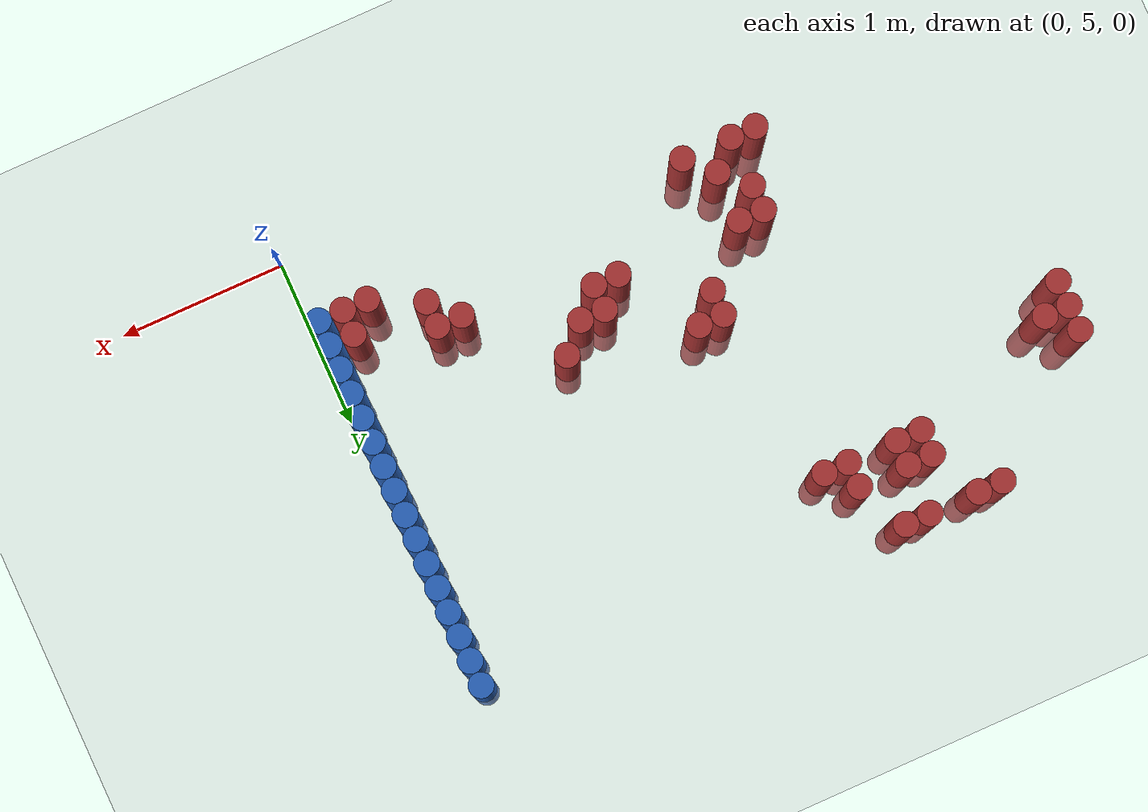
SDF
<sdf version="1.6">
 <world name="default">
  <model name="ground_plane">
   <static>1</static>
   <link name="link">
    <collision name="collision">
     <geometry><plane><normal>0 0 1</normal><size>100 100</size></plane></geometry>
     <surface><friction><ode><mu>100</mu><mu2>50</mu2></ode></friction></surface>
    </collision>
    <visual name="visual">
     <cast_shadows>0</cast_shadows>
     <geometry><plane><normal>0 0 1</normal><size>100 100</size></plane></geometry>
     <material>
      <script><uri>file://media/materials/scripts/gazebo.material</uri><name>Gazebo/Grey</name></script>
     </material>
    </visual>
   </link>
  </model>
  <model name="unit_cylinder_152">
   <static>1</static>
   <pose>-3.975000 6.975000 0.000000 0.000000 0.000000 0.000000</pose>
   <link name="link">
    <inertial>
     <mass>1</mass>
     <inertia><ixx>0.145833</ixx><ixy>0</ixy><ixz>0</ixz><iyy>0.145833</iyy><iyz>0</iyz><izz>0.125</izz></inertia>
    </inertial>
    <collision name="collision">
     <geometry><cylinder><radius>0.075000</radius><length>2</length></cylinder></geometry>
    </collision>
    <visual name="visual">
     <geometry><cylinder><radius>0.075000</radius><length>2</length></cylinder></geometry>
     <material>
      <ambient>0.648000 0.192000 0.192000 1</ambient>
      <diffuse>0.648000 0.192000 0.192000 1</diffuse>
     </material>
     <material>
      <script><name>Gazebo/Grey</name><uri>file://media/materials/scripts/gazebo.material</uri></script>
     </material>
    </visual>
   </link>
  </model>
  <model name="unit_cylinder_153">
   <static>1</static>
   <pose>-3.975000 7.125000 0.000000 0.000000 0.000000 0.000000</pose>
   <link name="link">
    <inertial>
     <mass>1</mass>
     <inertia><ixx>0.145833</ixx><ixy>0</ixy><ixz>0</ixz><iyy>0.145833</iyy><iyz>0</iyz><izz>0.125</izz></inertia>
    </inertial>
    <collision name="collision">
     <geometry><cylinder><radius>0.075000</radius><length>2</length></cylinder></geometry>
    </collision>
    <visual name="visual">
     <geometry><cylinder><radius>0.075000</radius><length>2</length></cylinder></geometry>
     <material>
      <ambient>0.648000 0.192000 0.192000 1</ambient>
      <diffuse>0.648000 0.192000 0.192000 1</diffuse>
     </material>
     <material>
      <script><name>Gazebo/Grey</name><uri>file://media/materials/scripts/gazebo.material</uri></script>
     </material>
    </visual>
   </link>
  </model>
  <model name="unit_cylinder_154">
   <static>1</static>
   <pose>-3.975000 7.275000 0.000000 0.000000 0.000000 0.000000</pose>
   <link name="link">
    <inertial>
     <mass>1</mass>
     <inertia><ixx>0.145833</ixx><ixy>0</ixy><ixz>0</ixz><iyy>0.145833</iyy><iyz>0</iyz><izz>0.125</izz></inertia>
    </inertial>
    <collision name="collision">
     <geometry><cylinder><radius>0.075000</radius><length>2</length></cylinder></geometry>
    </collision>
    <visual name="visual">
     <geometry><cylinder><radius>0.075000</radius><length>2</length></cylinder></geometry>
     <material>
      <ambient>0.648000 0.192000 0.192000 1</ambient>
      <diffuse>0.648000 0.192000 0.192000 1</diffuse>
     </material>
     <material>
      <script><name>Gazebo/Grey</name><uri>file://media/materials/scripts/gazebo.material</uri></script>
     </material>
    </visual>
   </link>
  </model>
  <model name="unit_cylinder_157">
   <static>1</static>
   <pose>-3.825000 7.125000 0.000000 0.000000 0.000000 0.000000</pose>
   <link name="link">
    <inertial>
     <mass>1</mass>
     <inertia><ixx>0.145833</ixx><ixy>0</ixy><ixz>0</ixz><iyy>0.145833</iyy><iyz>0</iyz><izz>0.125</izz></inertia>
    </inertial>
    <collision name="collision">
     <geometry><cylinder><radius>0.075000</radius><length>2</length></cylinder></geometry>
    </collision>
    <visual name="visual">
     <geometry><cylinder><radius>0.075000</radius><length>2</length></cylinder></geometry>
     <material>
      <ambient>0.648000 0.192000 0.192000 1</ambient>
      <diffuse>0.648000 0.192000 0.192000 1</diffuse>
     </material>
     <material>
      <script><name>Gazebo/Grey</name><uri>file://media/materials/scripts/gazebo.material</uri></script>
     </material>
    </visual>
   </link>
  </model>
  <model name="unit_cylinder_167">
   <static>1</static>
   <pose>-3.225000 7.875000 0.000000 0.000000 0.000000 0.000000</pose>
   <link name="link">
    <inertial>
     <mass>1</mass>
     <inertia><ixx>0.145833</ixx><ixy>0</ixy><ixz>0</ixz><iyy>0.145833</iyy><iyz>0</iyz><izz>0.125</izz></inertia>
    </inertial>
    <collision name="collision">
     <geometry><cylinder><radius>0.075000</radius><length>2</length></cylinder></geometry>
    </collision>
    <visual name="visual">
     <geometry><cylinder><radius>0.075000</radius><length>2</length></cylinder></geometry>
     <material>
      <ambient>0.648000 0.192000 0.192000 1</ambient>
      <diffuse>0.648000 0.192000 0.192000 1</diffuse>
     </material>
     <material>
      <script><name>Gazebo/Grey</name><uri>file://media/materials/scripts/gazebo.material</uri></script>
     </material>
    </visual>
   </link>
  </model>
  <model name="unit_cylinder_174">
   <static>1</static>
   <pose>-3.075000 7.875000 0.000000 0.000000 0.000000 0.000000</pose>
   <link name="link">
    <inertial>
     <mass>1</mass>
     <inertia><ixx>0.145833</ixx><ixy>0</ixy><ixz>0</ixz><iyy>0.145833</iyy><iyz>0</iyz><izz>0.125</izz></inertia>
    </inertial>
    <collision name="collision">
     <geometry><cylinder><radius>0.075000</radius><length>2</length></cylinder></geometry>
    </collision>
    <visual name="visual">
     <geometry><cylinder><radius>0.075000</radius><length>2</length></cylinder></geometry>
     <material>
      <ambient>0.648000 0.192000 0.192000 1</ambient>
      <diffuse>0.648000 0.192000 0.192000 1</diffuse>
     </material>
     <material>
      <script><name>Gazebo/Grey</name><uri>file://media/materials/scripts/gazebo.material</uri></script>
     </material>
    </visual>
   </link>
  </model>
  <model name="unit_cylinder_178">
   <static>1</static>
   <pose>-2.925000 7.425000 0.000000 0.000000 0.000000 0.000000</pose>
   <link name="link">
    <inertial>
     <mass>1</mass>
     <inertia><ixx>0.145833</ixx><ixy>0</ixy><ixz>0</ixz><iyy>0.145833</iyy><iyz>0</iyz><izz>0.125</izz></inertia>
    </inertial>
    <collision name="collision">
     <geometry><cylinder><radius>0.075000</radius><length>2</length></cylinder></geometry>
    </collision>
    <visual name="visual">
     <geometry><cylinder><radius>0.075000</radius><length>2</length></cylinder></geometry>
     <material>
      <ambient>0.648000 0.192000 0.192000 1</ambient>
      <diffuse>0.648000 0.192000 0.192000 1</diffuse>
     </material>
     <material>
      <script><name>Gazebo/Grey</name><uri>file://media/materials/scripts/gazebo.material</uri></script>
     </material>
    </visual>
   </link>
  </model>
  <model name="unit_cylinder_179">
   <static>1</static>
   <pose>-2.925000 7.575000 0.000000 0.000000 0.000000 0.000000</pose>
   <link name="link">
    <inertial>
     <mass>1</mass>
     <inertia><ixx>0.145833</ixx><ixy>0</ixy><ixz>0</ixz><iyy>0.145833</iyy><iyz>0</iyz><izz>0.125</izz></inertia>
    </inertial>
    <collision name="collision">
     <geometry><cylinder><radius>0.075000</radius><length>2</length></cylinder></geometry>
    </collision>
    <visual name="visual">
     <geometry><cylinder><radius>0.075000</radius><length>2</length></cylinder></geometry>
     <material>
      <ambient>0.648000 0.192000 0.192000 1</ambient>
      <diffuse>0.648000 0.192000 0.192000 1</diffuse>
     </material>
     <material>
      <script><name>Gazebo/Grey</name><uri>file://media/materials/scripts/gazebo.material</uri></script>
     </material>
    </visual>
   </link>
  </model>
  <model name="unit_cylinder_183">
   <static>1</static>
   <pose>-2.775000 5.475000 0.000000 0.000000 0.000000 0.000000</pose>
   <link name="link">
    <inertial>
     <mass>1</mass>
     <inertia><ixx>0.145833</ixx><ixy>0</ixy><ixz>0</ixz><iyy>0.145833</iyy><iyz>0</iyz><izz>0.125</izz></inertia>
    </inertial>
    <collision name="collision">
     <geometry><cylinder><radius>0.075000</radius><length>2</length></cylinder></geometry>
    </collision>
    <visual name="visual">
     <geometry><cylinder><radius>0.075000</radius><length>2</length></cylinder></geometry>
     <material>
      <ambient>0.648000 0.192000 0.192000 1</ambient>
      <diffuse>0.648000 0.192000 0.192000 1</diffuse>
     </material>
     <material>
      <script><name>Gazebo/Grey</name><uri>file://media/materials/scripts/gazebo.material</uri></script>
     </material>
    </visual>
   </link>
  </model>
  <model name="unit_cylinder_184">
   <static>1</static>
   <pose>-2.775000 7.425000 0.000000 0.000000 0.000000 0.000000</pose>
   <link name="link">
    <inertial>
     <mass>1</mass>
     <inertia><ixx>0.145833</ixx><ixy>0</ixy><ixz>0</ixz><iyy>0.145833</iyy><iyz>0</iyz><izz>0.125</izz></inertia>
    </inertial>
    <collision name="collision">
     <geometry><cylinder><radius>0.075000</radius><length>2</length></cylinder></geometry>
    </collision>
    <visual name="visual">
     <geometry><cylinder><radius>0.075000</radius><length>2</length></cylinder></geometry>
     <material>
      <ambient>0.648000 0.192000 0.192000 1</ambient>
      <diffuse>0.648000 0.192000 0.192000 1</diffuse>
     </material>
     <material>
      <script><name>Gazebo/Grey</name><uri>file://media/materials/scripts/gazebo.material</uri></script>
     </material>
    </visual>
   </link>
  </model>
  <model name="unit_cylinder_185">
   <static>1</static>
   <pose>-2.775000 7.575000 0.000000 0.000000 0.000000 0.000000</pose>
   <link name="link">
    <inertial>
     <mass>1</mass>
     <inertia><ixx>0.145833</ixx><ixy>0</ixy><ixz>0</ixz><iyy>0.145833</iyy><iyz>0</iyz><izz>0.125</izz></inertia>
    </inertial>
    <collision name="collision">
     <geometry><cylinder><radius>0.075000</radius><length>2</length></cylinder></geometry>
    </collision>
    <visual name="visual">
     <geometry><cylinder><radius>0.075000</radius><length>2</length></cylinder></geometry>
     <material>
      <ambient>0.648000 0.192000 0.192000 1</ambient>
      <diffuse>0.648000 0.192000 0.192000 1</diffuse>
     </material>
     <material>
      <script><name>Gazebo/Grey</name><uri>file://media/materials/scripts/gazebo.material</uri></script>
     </material>
    </visual>
   </link>
  </model>
  <model name="unit_cylinder_186">
   <static>1</static>
   <pose>-2.775000 7.875000 0.000000 0.000000 0.000000 0.000000</pose>
   <link name="link">
    <inertial>
     <mass>1</mass>
     <inertia><ixx>0.145833</ixx><ixy>0</ixy><ixz>0</ixz><iyy>0.145833</iyy><iyz>0</iyz><izz>0.125</izz></inertia>
    </inertial>
    <collision name="collision">
     <geometry><cylinder><radius>0.075000</radius><length>2</length></cylinder></geometry>
    </collision>
    <visual name="visual">
     <geometry><cylinder><radius>0.075000</radius><length>2</length></cylinder></geometry>
     <material>
      <ambient>0.648000 0.192000 0.192000 1</ambient>
      <diffuse>0.648000 0.192000 0.192000 1</diffuse>
     </material>
     <material>
      <script><name>Gazebo/Grey</name><uri>file://media/materials/scripts/gazebo.material</uri></script>
     </material>
    </visual>
   </link>
  </model>
  <model name="unit_cylinder_190">
   <static>1</static>
   <pose>-2.625000 5.475000 0.000000 0.000000 0.000000 0.000000</pose>
   <link name="link">
    <inertial>
     <mass>1</mass>
     <inertia><ixx>0.145833</ixx><ixy>0</ixy><ixz>0</ixz><iyy>0.145833</iyy><iyz>0</iyz><izz>0.125</izz></inertia>
    </inertial>
    <collision name="collision">
     <geometry><cylinder><radius>0.075000</radius><length>2</length></cylinder></geometry>
    </collision>
    <visual name="visual">
     <geometry><cylinder><radius>0.075000</radius><length>2</length></cylinder></geometry>
     <material>
      <ambient>0.648000 0.192000 0.192000 1</ambient>
      <diffuse>0.648000 0.192000 0.192000 1</diffuse>
     </material>
     <material>
      <script><name>Gazebo/Grey</name><uri>file://media/materials/scripts/gazebo.material</uri></script>
     </material>
    </visual>
   </link>
  </model>
  <model name="unit_cylinder_191">
   <static>1</static>
   <pose>-2.625000 5.775000 0.000000 0.000000 0.000000 0.000000</pose>
   <link name="link">
    <inertial>
     <mass>1</mass>
     <inertia><ixx>0.145833</ixx><ixy>0</ixy><ixz>0</ixz><iyy>0.145833</iyy><iyz>0</iyz><izz>0.125</izz></inertia>
    </inertial>
    <collision name="collision">
     <geometry><cylinder><radius>0.075000</radius><length>2</length></cylinder></geometry>
    </collision>
    <visual name="visual">
     <geometry><cylinder><radius>0.075000</radius><length>2</length></cylinder></geometry>
     <material>
      <ambient>0.648000 0.192000 0.192000 1</ambient>
      <diffuse>0.648000 0.192000 0.192000 1</diffuse>
     </material>
     <material>
      <script><name>Gazebo/Grey</name><uri>file://media/materials/scripts/gazebo.material</uri></script>
     </material>
    </visual>
   </link>
  </model>
  <model name="unit_cylinder_192">
   <static>1</static>
   <pose>-2.625000 5.925000 0.000000 0.000000 0.000000 0.000000</pose>
   <link name="link">
    <inertial>
     <mass>1</mass>
     <inertia><ixx>0.145833</ixx><ixy>0</ixy><ixz>0</ixz><iyy>0.145833</iyy><iyz>0</iyz><izz>0.125</izz></inertia>
    </inertial>
    <collision name="collision">
     <geometry><cylinder><radius>0.075000</radius><length>2</length></cylinder></geometry>
    </collision>
    <visual name="visual">
     <geometry><cylinder><radius>0.075000</radius><length>2</length></cylinder></geometry>
     <material>
      <ambient>0.648000 0.192000 0.192000 1</ambient>
      <diffuse>0.648000 0.192000 0.192000 1</diffuse>
     </material>
     <material>
      <script><name>Gazebo/Grey</name><uri>file://media/materials/scripts/gazebo.material</uri></script>
     </material>
    </visual>
   </link>
  </model>
  <model name="unit_cylinder_193">
   <static>1</static>
   <pose>-2.625000 7.875000 0.000000 0.000000 0.000000 0.000000</pose>
   <link name="link">
    <inertial>
     <mass>1</mass>
     <inertia><ixx>0.145833</ixx><ixy>0</ixy><ixz>0</ixz><iyy>0.145833</iyy><iyz>0</iyz><izz>0.125</izz></inertia>
    </inertial>
    <collision name="collision">
     <geometry><cylinder><radius>0.075000</radius><length>2</length></cylinder></geometry>
    </collision>
    <visual name="visual">
     <geometry><cylinder><radius>0.075000</radius><length>2</length></cylinder></geometry>
     <material>
      <ambient>0.648000 0.192000 0.192000 1</ambient>
      <diffuse>0.648000 0.192000 0.192000 1</diffuse>
     </material>
     <material>
      <script><name>Gazebo/Grey</name><uri>file://media/materials/scripts/gazebo.material</uri></script>
     </material>
    </visual>
   </link>
  </model>
  <model name="unit_cylinder_195">
   <static>1</static>
   <pose>-2.475000 5.625000 0.000000 0.000000 0.000000 0.000000</pose>
   <link name="link">
    <inertial>
     <mass>1</mass>
     <inertia><ixx>0.145833</ixx><ixy>0</ixy><ixz>0</ixz><iyy>0.145833</iyy><iyz>0</iyz><izz>0.125</izz></inertia>
    </inertial>
    <collision name="collision">
     <geometry><cylinder><radius>0.075000</radius><length>2</length></cylinder></geometry>
    </collision>
    <visual name="visual">
     <geometry><cylinder><radius>0.075000</radius><length>2</length></cylinder></geometry>
     <material>
      <ambient>0.648000 0.192000 0.192000 1</ambient>
      <diffuse>0.648000 0.192000 0.192000 1</diffuse>
     </material>
     <material>
      <script><name>Gazebo/Grey</name><uri>file://media/materials/scripts/gazebo.material</uri></script>
     </material>
    </visual>
   </link>
  </model>
  <model name="unit_cylinder_196">
   <static>1</static>
   <pose>-2.475000 5.925000 0.000000 0.000000 0.000000 0.000000</pose>
   <link name="link">
    <inertial>
     <mass>1</mass>
     <inertia><ixx>0.145833</ixx><ixy>0</ixy><ixz>0</ixz><iyy>0.145833</iyy><iyz>0</iyz><izz>0.125</izz></inertia>
    </inertial>
    <collision name="collision">
     <geometry><cylinder><radius>0.075000</radius><length>2</length></cylinder></geometry>
    </collision>
    <visual name="visual">
     <geometry><cylinder><radius>0.075000</radius><length>2</length></cylinder></geometry>
     <material>
      <ambient>0.648000 0.192000 0.192000 1</ambient>
      <diffuse>0.648000 0.192000 0.192000 1</diffuse>
     </material>
     <material>
      <script><name>Gazebo/Grey</name><uri>file://media/materials/scripts/gazebo.material</uri></script>
     </material>
    </visual>
   </link>
  </model>
  <model name="unit_cylinder_197">
   <static>1</static>
   <pose>-2.475000 7.425000 0.000000 0.000000 0.000000 0.000000</pose>
   <link name="link">
    <inertial>
     <mass>1</mass>
     <inertia><ixx>0.145833</ixx><ixy>0</ixy><ixz>0</ixz><iyy>0.145833</iyy><iyz>0</iyz><izz>0.125</izz></inertia>
    </inertial>
    <collision name="collision">
     <geometry><cylinder><radius>0.075000</radius><length>2</length></cylinder></geometry>
    </collision>
    <visual name="visual">
     <geometry><cylinder><radius>0.075000</radius><length>2</length></cylinder></geometry>
     <material>
      <ambient>0.648000 0.192000 0.192000 1</ambient>
      <diffuse>0.648000 0.192000 0.192000 1</diffuse>
     </material>
     <material>
      <script><name>Gazebo/Grey</name><uri>file://media/materials/scripts/gazebo.material</uri></script>
     </material>
    </visual>
   </link>
  </model>
  <model name="unit_cylinder_198">
   <static>1</static>
   <pose>-2.475000 7.575000 0.000000 0.000000 0.000000 0.000000</pose>
   <link name="link">
    <inertial>
     <mass>1</mass>
     <inertia><ixx>0.145833</ixx><ixy>0</ixy><ixz>0</ixz><iyy>0.145833</iyy><iyz>0</iyz><izz>0.125</izz></inertia>
    </inertial>
    <collision name="collision">
     <geometry><cylinder><radius>0.075000</radius><length>2</length></cylinder></geometry>
    </collision>
    <visual name="visual">
     <geometry><cylinder><radius>0.075000</radius><length>2</length></cylinder></geometry>
     <material>
      <ambient>0.648000 0.192000 0.192000 1</ambient>
      <diffuse>0.648000 0.192000 0.192000 1</diffuse>
     </material>
     <material>
      <script><name>Gazebo/Grey</name><uri>file://media/materials/scripts/gazebo.material</uri></script>
     </material>
    </visual>
   </link>
  </model>
  <model name="unit_cylinder_199">
   <static>1</static>
   <pose>-2.325000 5.475000 0.000000 0.000000 0.000000 0.000000</pose>
   <link name="link">
    <inertial>
     <mass>1</mass>
     <inertia><ixx>0.145833</ixx><ixy>0</ixy><ixz>0</ixz><iyy>0.145833</iyy><iyz>0</iyz><izz>0.125</izz></inertia>
    </inertial>
    <collision name="collision">
     <geometry><cylinder><radius>0.075000</radius><length>2</length></cylinder></geometry>
    </collision>
    <visual name="visual">
     <geometry><cylinder><radius>0.075000</radius><length>2</length></cylinder></geometry>
     <material>
      <ambient>0.648000 0.192000 0.192000 1</ambient>
      <diffuse>0.648000 0.192000 0.192000 1</diffuse>
     </material>
     <material>
      <script><name>Gazebo/Grey</name><uri>file://media/materials/scripts/gazebo.material</uri></script>
     </material>
    </visual>
   </link>
  </model>
  <model name="unit_cylinder_200">
   <static>1</static>
   <pose>-2.325000 7.425000 0.000000 0.000000 0.000000 0.000000</pose>
   <link name="link">
    <inertial>
     <mass>1</mass>
     <inertia><ixx>0.145833</ixx><ixy>0</ixy><ixz>0</ixz><iyy>0.145833</iyy><iyz>0</iyz><izz>0.125</izz></inertia>
    </inertial>
    <collision name="collision">
     <geometry><cylinder><radius>0.075000</radius><length>2</length></cylinder></geometry>
    </collision>
    <visual name="visual">
     <geometry><cylinder><radius>0.075000</radius><length>2</length></cylinder></geometry>
     <material>
      <ambient>0.648000 0.192000 0.192000 1</ambient>
      <diffuse>0.648000 0.192000 0.192000 1</diffuse>
     </material>
     <material>
      <script><name>Gazebo/Grey</name><uri>file://media/materials/scripts/gazebo.material</uri></script>
     </material>
    </visual>
   </link>
  </model>
  <model name="unit_cylinder_202">
   <static>1</static>
   <pose>-2.175000 6.225000 0.000000 0.000000 0.000000 0.000000</pose>
   <link name="link">
    <inertial>
     <mass>1</mass>
     <inertia><ixx>0.145833</ixx><ixy>0</ixy><ixz>0</ixz><iyy>0.145833</iyy><iyz>0</iyz><izz>0.125</izz></inertia>
    </inertial>
    <collision name="collision">
     <geometry><cylinder><radius>0.075000</radius><length>2</length></cylinder></geometry>
    </collision>
    <visual name="visual">
     <geometry><cylinder><radius>0.075000</radius><length>2</length></cylinder></geometry>
     <material>
      <ambient>0.648000 0.192000 0.192000 1</ambient>
      <diffuse>0.648000 0.192000 0.192000 1</diffuse>
     </material>
     <material>
      <script><name>Gazebo/Grey</name><uri>file://media/materials/scripts/gazebo.material</uri></script>
     </material>
    </visual>
   </link>
  </model>
  <model name="unit_cylinder_203">
   <static>1</static>
   <pose>-2.175000 6.375000 0.000000 0.000000 0.000000 0.000000</pose>
   <link name="link">
    <inertial>
     <mass>1</mass>
     <inertia><ixx>0.145833</ixx><ixy>0</ixy><ixz>0</ixz><iyy>0.145833</iyy><iyz>0</iyz><izz>0.125</izz></inertia>
    </inertial>
    <collision name="collision">
     <geometry><cylinder><radius>0.075000</radius><length>2</length></cylinder></geometry>
    </collision>
    <visual name="visual">
     <geometry><cylinder><radius>0.075000</radius><length>2</length></cylinder></geometry>
     <material>
      <ambient>0.648000 0.192000 0.192000 1</ambient>
      <diffuse>0.648000 0.192000 0.192000 1</diffuse>
     </material>
     <material>
      <script><name>Gazebo/Grey</name><uri>file://media/materials/scripts/gazebo.material</uri></script>
     </material>
    </visual>
   </link>
  </model>
  <model name="unit_cylinder_206">
   <static>1</static>
   <pose>-2.025000 6.375000 0.000000 0.000000 0.000000 0.000000</pose>
   <link name="link">
    <inertial>
     <mass>1</mass>
     <inertia><ixx>0.145833</ixx><ixy>0</ixy><ixz>0</ixz><iyy>0.145833</iyy><iyz>0</iyz><izz>0.125</izz></inertia>
    </inertial>
    <collision name="collision">
     <geometry><cylinder><radius>0.075000</radius><length>2</length></cylinder></geometry>
    </collision>
    <visual name="visual">
     <geometry><cylinder><radius>0.075000</radius><length>2</length></cylinder></geometry>
     <material>
      <ambient>0.648000 0.192000 0.192000 1</ambient>
      <diffuse>0.648000 0.192000 0.192000 1</diffuse>
     </material>
     <material>
      <script><name>Gazebo/Grey</name><uri>file://media/materials/scripts/gazebo.material</uri></script>
     </material>
    </visual>
   </link>
  </model>
  <model name="unit_cylinder_212">
   <static>1</static>
   <pose>-1.725000 5.925000 0.000000 0.000000 0.000000 0.000000</pose>
   <link name="link">
    <inertial>
     <mass>1</mass>
     <inertia><ixx>0.145833</ixx><ixy>0</ixy><ixz>0</ixz><iyy>0.145833</iyy><iyz>0</iyz><izz>0.125</izz></inertia>
    </inertial>
    <collision name="collision">
     <geometry><cylinder><radius>0.075000</radius><length>2</length></cylinder></geometry>
    </collision>
    <visual name="visual">
     <geometry><cylinder><radius>0.075000</radius><length>2</length></cylinder></geometry>
     <material>
      <ambient>0.648000 0.192000 0.192000 1</ambient>
      <diffuse>0.648000 0.192000 0.192000 1</diffuse>
     </material>
     <material>
      <script><name>Gazebo/Grey</name><uri>file://media/materials/scripts/gazebo.material</uri></script>
     </material>
    </visual>
   </link>
  </model>
  <model name="unit_cylinder_215">
   <static>1</static>
   <pose>-1.575000 5.925000 0.000000 0.000000 0.000000 0.000000</pose>
   <link name="link">
    <inertial>
     <mass>1</mass>
     <inertia><ixx>0.145833</ixx><ixy>0</ixy><ixz>0</ixz><iyy>0.145833</iyy><iyz>0</iyz><izz>0.125</izz></inertia>
    </inertial>
    <collision name="collision">
     <geometry><cylinder><radius>0.075000</radius><length>2</length></cylinder></geometry>
    </collision>
    <visual name="visual">
     <geometry><cylinder><radius>0.075000</radius><length>2</length></cylinder></geometry>
     <material>
      <ambient>0.648000 0.192000 0.192000 1</ambient>
      <diffuse>0.648000 0.192000 0.192000 1</diffuse>
     </material>
     <material>
      <script><name>Gazebo/Grey</name><uri>file://media/materials/scripts/gazebo.material</uri></script>
     </material>
    </visual>
   </link>
  </model>
  <model name="unit_cylinder_216">
   <static>1</static>
   <pose>-1.575000 6.075000 0.000000 0.000000 0.000000 0.000000</pose>
   <link name="link">
    <inertial>
     <mass>1</mass>
     <inertia><ixx>0.145833</ixx><ixy>0</ixy><ixz>0</ixz><iyy>0.145833</iyy><iyz>0</iyz><izz>0.125</izz></inertia>
    </inertial>
    <collision name="collision">
     <geometry><cylinder><radius>0.075000</radius><length>2</length></cylinder></geometry>
    </collision>
    <visual name="visual">
     <geometry><cylinder><radius>0.075000</radius><length>2</length></cylinder></geometry>
     <material>
      <ambient>0.648000 0.192000 0.192000 1</ambient>
      <diffuse>0.648000 0.192000 0.192000 1</diffuse>
     </material>
     <material>
      <script><name>Gazebo/Grey</name><uri>file://media/materials/scripts/gazebo.material</uri></script>
     </material>
    </visual>
   </link>
  </model>
  <model name="unit_cylinder_217">
   <static>1</static>
   <pose>-1.425000 6.075000 0.000000 0.000000 0.000000 0.000000</pose>
   <link name="link">
    <inertial>
     <mass>1</mass>
     <inertia><ixx>0.145833</ixx><ixy>0</ixy><ixz>0</ixz><iyy>0.145833</iyy><iyz>0</iyz><izz>0.125</izz></inertia>
    </inertial>
    <collision name="collision">
     <geometry><cylinder><radius>0.075000</radius><length>2</length></cylinder></geometry>
    </collision>
    <visual name="visual">
     <geometry><cylinder><radius>0.075000</radius><length>2</length></cylinder></geometry>
     <material>
      <ambient>0.648000 0.192000 0.192000 1</ambient>
      <diffuse>0.648000 0.192000 0.192000 1</diffuse>
     </material>
     <material>
      <script><name>Gazebo/Grey</name><uri>file://media/materials/scripts/gazebo.material</uri></script>
     </material>
    </visual>
   </link>
  </model>
  <model name="unit_cylinder_218">
   <static>1</static>
   <pose>-1.275000 6.225000 0.000000 0.000000 0.000000 0.000000</pose>
   <link name="link">
    <inertial>
     <mass>1</mass>
     <inertia><ixx>0.145833</ixx><ixy>0</ixy><ixz>0</ixz><iyy>0.145833</iyy><iyz>0</iyz><izz>0.125</izz></inertia>
    </inertial>
    <collision name="collision">
     <geometry><cylinder><radius>0.075000</radius><length>2</length></cylinder></geometry>
    </collision>
    <visual name="visual">
     <geometry><cylinder><radius>0.075000</radius><length>2</length></cylinder></geometry>
     <material>
      <ambient>0.648000 0.192000 0.192000 1</ambient>
      <diffuse>0.648000 0.192000 0.192000 1</diffuse>
     </material>
     <material>
      <script><name>Gazebo/Grey</name><uri>file://media/materials/scripts/gazebo.material</uri></script>
     </material>
    </visual>
   </link>
  </model>
  <model name="unit_cylinder_220">
   <static>1</static>
   <pose>-0.825000 5.775000 0.000000 0.000000 0.000000 0.000000</pose>
   <link name="link">
    <inertial>
     <mass>1</mass>
     <inertia><ixx>0.145833</ixx><ixy>0</ixy><ixz>0</ixz><iyy>0.145833</iyy><iyz>0</iyz><izz>0.125</izz></inertia>
    </inertial>
    <collision name="collision">
     <geometry><cylinder><radius>0.075000</radius><length>2</length></cylinder></geometry>
    </collision>
    <visual name="visual">
     <geometry><cylinder><radius>0.075000</radius><length>2</length></cylinder></geometry>
     <material>
      <ambient>0.648000 0.192000 0.192000 1</ambient>
      <diffuse>0.648000 0.192000 0.192000 1</diffuse>
     </material>
     <material>
      <script><name>Gazebo/Grey</name><uri>file://media/materials/scripts/gazebo.material</uri></script>
     </material>
    </visual>
   </link>
  </model>
  <model name="unit_cylinder_224">
   <static>1</static>
   <pose>-0.675000 5.625000 0.000000 0.000000 0.000000 0.000000</pose>
   <link name="link">
    <inertial>
     <mass>1</mass>
     <inertia><ixx>0.145833</ixx><ixy>0</ixy><ixz>0</ixz><iyy>0.145833</iyy><iyz>0</iyz><izz>0.125</izz></inertia>
    </inertial>
    <collision name="collision">
     <geometry><cylinder><radius>0.075000</radius><length>2</length></cylinder></geometry>
    </collision>
    <visual name="visual">
     <geometry><cylinder><radius>0.075000</radius><length>2</length></cylinder></geometry>
     <material>
      <ambient>0.648000 0.192000 0.192000 1</ambient>
      <diffuse>0.648000 0.192000 0.192000 1</diffuse>
     </material>
     <material>
      <script><name>Gazebo/Grey</name><uri>file://media/materials/scripts/gazebo.material</uri></script>
     </material>
    </visual>
   </link>
  </model>
  <model name="unit_cylinder_225">
   <static>1</static>
   <pose>-0.675000 5.775000 0.000000 0.000000 0.000000 0.000000</pose>
   <link name="link">
    <inertial>
     <mass>1</mass>
     <inertia><ixx>0.145833</ixx><ixy>0</ixy><ixz>0</ixz><iyy>0.145833</iyy><iyz>0</iyz><izz>0.125</izz></inertia>
    </inertial>
    <collision name="collision">
     <geometry><cylinder><radius>0.075000</radius><length>2</length></cylinder></geometry>
    </collision>
    <visual name="visual">
     <geometry><cylinder><radius>0.075000</radius><length>2</length></cylinder></geometry>
     <material>
      <ambient>0.648000 0.192000 0.192000 1</ambient>
      <diffuse>0.648000 0.192000 0.192000 1</diffuse>
     </material>
     <material>
      <script><name>Gazebo/Grey</name><uri>file://media/materials/scripts/gazebo.material</uri></script>
     </material>
    </visual>
   </link>
  </model>
  <model name="unit_cylinder_230">
   <static>1</static>
   <pose>-0.375000 5.475000 0.000000 0.000000 0.000000 0.000000</pose>
   <link name="link">
    <inertial>
     <mass>1</mass>
     <inertia><ixx>0.145833</ixx><ixy>0</ixy><ixz>0</ixz><iyy>0.145833</iyy><iyz>0</iyz><izz>0.125</izz></inertia>
    </inertial>
    <collision name="collision">
     <geometry><cylinder><radius>0.075000</radius><length>2</length></cylinder></geometry>
    </collision>
    <visual name="visual">
     <geometry><cylinder><radius>0.075000</radius><length>2</length></cylinder></geometry>
     <material>
      <ambient>0.648000 0.192000 0.192000 1</ambient>
      <diffuse>0.648000 0.192000 0.192000 1</diffuse>
     </material>
     <material>
      <script><name>Gazebo/Grey</name><uri>file://media/materials/scripts/gazebo.material</uri></script>
     </material>
    </visual>
   </link>
  </model>
  <model name="unit_cylinder_232">
   <static>1</static>
   <pose>-0.225000 5.475000 0.000000 0.000000 0.000000 0.000000</pose>
   <link name="link">
    <inertial>
     <mass>1</mass>
     <inertia><ixx>0.145833</ixx><ixy>0</ixy><ixz>0</ixz><iyy>0.145833</iyy><iyz>0</iyz><izz>0.125</izz></inertia>
    </inertial>
    <collision name="collision">
     <geometry><cylinder><radius>0.075000</radius><length>2</length></cylinder></geometry>
    </collision>
    <visual name="visual">
     <geometry><cylinder><radius>0.075000</radius><length>2</length></cylinder></geometry>
     <material>
      <ambient>0.648000 0.192000 0.192000 1</ambient>
      <diffuse>0.648000 0.192000 0.192000 1</diffuse>
     </material>
     <material>
      <script><name>Gazebo/Grey</name><uri>file://media/materials/scripts/gazebo.material</uri></script>
     </material>
    </visual>
   </link>
  </model>
  <model name="unit_cylinder_233">
   <static>1</static>
   <pose>-0.225000 5.625000 0.000000 0.000000 0.000000 0.000000</pose>
   <link name="link">
    <inertial>
     <mass>1</mass>
     <inertia><ixx>0.145833</ixx><ixy>0</ixy><ixz>0</ixz><iyy>0.145833</iyy><iyz>0</iyz><izz>0.125</izz></inertia>
    </inertial>
    <collision name="collision">
     <geometry><cylinder><radius>0.075000</radius><length>2</length></cylinder></geometry>
    </collision>
    <visual name="visual">
     <geometry><cylinder><radius>0.075000</radius><length>2</length></cylinder></geometry>
     <material>
      <ambient>0.648000 0.192000 0.192000 1</ambient>
      <diffuse>0.648000 0.192000 0.192000 1</diffuse>
     </material>
     <material>
      <script><name>Gazebo/Grey</name><uri>file://media/materials/scripts/gazebo.material</uri></script>
     </material>
    </visual>
   </link>
  </model>
  <model name="unit_cylinder_236">
   <static>1</static>
   <pose>-0.075000 5.475000 0.000000 0.000000 0.000000 0.000000</pose>
   <link name="link">
    <inertial>
     <mass>1</mass>
     <inertia><ixx>0.145833</ixx><ixy>0</ixy><ixz>0</ixz><iyy>0.145833</iyy><iyz>0</iyz><izz>0.125</izz></inertia>
    </inertial>
    <collision name="collision">
     <geometry><cylinder><radius>0.075000</radius><length>2</length></cylinder></geometry>
    </collision>
    <visual name="visual">
     <geometry><cylinder><radius>0.075000</radius><length>2</length></cylinder></geometry>
     <material>
      <ambient>0.152000 0.379000 0.720000 1</ambient>
      <diffuse>0.152000 0.379000 0.720000 1</diffuse>
     </material>
     <material>
      <script><name>Gazebo/Grey</name><uri>file://media/materials/scripts/gazebo.material</uri></script>
     </material>
    </visual>
   </link>
  </model>
  <model name="unit_cylinder_237">
   <static>1</static>
   <pose>-0.075000 5.625000 0.000000 0.000000 0.000000 0.000000</pose>
   <link name="link">
    <inertial>
     <mass>1</mass>
     <inertia><ixx>0.145833</ixx><ixy>0</ixy><ixz>0</ixz><iyy>0.145833</iyy><iyz>0</iyz><izz>0.125</izz></inertia>
    </inertial>
    <collision name="collision">
     <geometry><cylinder><radius>0.075000</radius><length>2</length></cylinder></geometry>
    </collision>
    <visual name="visual">
     <geometry><cylinder><radius>0.075000</radius><length>2</length></cylinder></geometry>
     <material>
      <ambient>0.152000 0.379000 0.720000 1</ambient>
      <diffuse>0.152000 0.379000 0.720000 1</diffuse>
     </material>
     <material>
      <script><name>Gazebo/Grey</name><uri>file://media/materials/scripts/gazebo.material</uri></script>
     </material>
    </visual>
   </link>
  </model>
  <model name="unit_cylinder_238">
   <static>1</static>
   <pose>-0.075000 5.775000 0.000000 0.000000 0.000000 0.000000</pose>
   <link name="link">
    <inertial>
     <mass>1</mass>
     <inertia><ixx>0.145833</ixx><ixy>0</ixy><ixz>0</ixz><iyy>0.145833</iyy><iyz>0</iyz><izz>0.125</izz></inertia>
    </inertial>
    <collision name="collision">
     <geometry><cylinder><radius>0.075000</radius><length>2</length></cylinder></geometry>
    </collision>
    <visual name="visual">
     <geometry><cylinder><radius>0.075000</radius><length>2</length></cylinder></geometry>
     <material>
      <ambient>0.152000 0.379000 0.720000 1</ambient>
      <diffuse>0.152000 0.379000 0.720000 1</diffuse>
     </material>
     <material>
      <script><name>Gazebo/Grey</name><uri>file://media/materials/scripts/gazebo.material</uri></script>
     </material>
    </visual>
   </link>
  </model>
  <model name="unit_cylinder_239">
   <static>1</static>
   <pose>-0.075000 5.925000 0.000000 0.000000 0.000000 0.000000</pose>
   <link name="link">
    <inertial>
     <mass>1</mass>
     <inertia><ixx>0.145833</ixx><ixy>0</ixy><ixz>0</ixz><iyy>0.145833</iyy><iyz>0</iyz><izz>0.125</izz></inertia>
    </inertial>
    <collision name="collision">
     <geometry><cylinder><radius>0.075000</radius><length>2</length></cylinder></geometry>
    </collision>
    <visual name="visual">
     <geometry><cylinder><radius>0.075000</radius><length>2</length></cylinder></geometry>
     <material>
      <ambient>0.152000 0.379000 0.720000 1</ambient>
      <diffuse>0.152000 0.379000 0.720000 1</diffuse>
     </material>
     <material>
      <script><name>Gazebo/Grey</name><uri>file://media/materials/scripts/gazebo.material</uri></script>
     </material>
    </visual>
   </link>
  </model>
  <model name="unit_cylinder_240">
   <static>1</static>
   <pose>-0.075000 6.075000 0.000000 0.000000 0.000000 0.000000</pose>
   <link name="link">
    <inertial>
     <mass>1</mass>
     <inertia><ixx>0.145833</ixx><ixy>0</ixy><ixz>0</ixz><iyy>0.145833</iyy><iyz>0</iyz><izz>0.125</izz></inertia>
    </inertial>
    <collision name="collision">
     <geometry><cylinder><radius>0.075000</radius><length>2</length></cylinder></geometry>
    </collision>
    <visual name="visual">
     <geometry><cylinder><radius>0.075000</radius><length>2</length></cylinder></geometry>
     <material>
      <ambient>0.152000 0.379000 0.720000 1</ambient>
      <diffuse>0.152000 0.379000 0.720000 1</diffuse>
     </material>
     <material>
      <script><name>Gazebo/Grey</name><uri>file://media/materials/scripts/gazebo.material</uri></script>
     </material>
    </visual>
   </link>
  </model>
  <model name="unit_cylinder_241">
   <static>1</static>
   <pose>-0.075000 6.225000 0.000000 0.000000 0.000000 0.000000</pose>
   <link name="link">
    <inertial>
     <mass>1</mass>
     <inertia><ixx>0.145833</ixx><ixy>0</ixy><ixz>0</ixz><iyy>0.145833</iyy><iyz>0</iyz><izz>0.125</izz></inertia>
    </inertial>
    <collision name="collision">
     <geometry><cylinder><radius>0.075000</radius><length>2</length></cylinder></geometry>
    </collision>
    <visual name="visual">
     <geometry><cylinder><radius>0.075000</radius><length>2</length></cylinder></geometry>
     <material>
      <ambient>0.152000 0.379000 0.720000 1</ambient>
      <diffuse>0.152000 0.379000 0.720000 1</diffuse>
     </material>
     <material>
      <script><name>Gazebo/Grey</name><uri>file://media/materials/scripts/gazebo.material</uri></script>
     </material>
    </visual>
   </link>
  </model>
  <model name="unit_cylinder_242">
   <static>1</static>
   <pose>-0.075000 6.375000 0.000000 0.000000 0.000000 0.000000</pose>
   <link name="link">
    <inertial>
     <mass>1</mass>
     <inertia><ixx>0.145833</ixx><ixy>0</ixy><ixz>0</ixz><iyy>0.145833</iyy><iyz>0</iyz><izz>0.125</izz></inertia>
    </inertial>
    <collision name="collision">
     <geometry><cylinder><radius>0.075000</radius><length>2</length></cylinder></geometry>
    </collision>
    <visual name="visual">
     <geometry><cylinder><radius>0.075000</radius><length>2</length></cylinder></geometry>
     <material>
      <ambient>0.152000 0.379000 0.720000 1</ambient>
      <diffuse>0.152000 0.379000 0.720000 1</diffuse>
     </material>
     <material>
      <script><name>Gazebo/Grey</name><uri>file://media/materials/scripts/gazebo.material</uri></script>
     </material>
    </visual>
   </link>
  </model>
  <model name="unit_cylinder_243">
   <static>1</static>
   <pose>-0.075000 6.525000 0.000000 0.000000 0.000000 0.000000</pose>
   <link name="link">
    <inertial>
     <mass>1</mass>
     <inertia><ixx>0.145833</ixx><ixy>0</ixy><ixz>0</ixz><iyy>0.145833</iyy><iyz>0</iyz><izz>0.125</izz></inertia>
    </inertial>
    <collision name="collision">
     <geometry><cylinder><radius>0.075000</radius><length>2</length></cylinder></geometry>
    </collision>
    <visual name="visual">
     <geometry><cylinder><radius>0.075000</radius><length>2</length></cylinder></geometry>
     <material>
      <ambient>0.152000 0.379000 0.720000 1</ambient>
      <diffuse>0.152000 0.379000 0.720000 1</diffuse>
     </material>
     <material>
      <script><name>Gazebo/Grey</name><uri>file://media/materials/scripts/gazebo.material</uri></script>
     </material>
    </visual>
   </link>
  </model>
  <model name="unit_cylinder_244">
   <static>1</static>
   <pose>-0.075000 6.675000 0.000000 0.000000 0.000000 0.000000</pose>
   <link name="link">
    <inertial>
     <mass>1</mass>
     <inertia><ixx>0.145833</ixx><ixy>0</ixy><ixz>0</ixz><iyy>0.145833</iyy><iyz>0</iyz><izz>0.125</izz></inertia>
    </inertial>
    <collision name="collision">
     <geometry><cylinder><radius>0.075000</radius><length>2</length></cylinder></geometry>
    </collision>
    <visual name="visual">
     <geometry><cylinder><radius>0.075000</radius><length>2</length></cylinder></geometry>
     <material>
      <ambient>0.152000 0.379000 0.720000 1</ambient>
      <diffuse>0.152000 0.379000 0.720000 1</diffuse>
     </material>
     <material>
      <script><name>Gazebo/Grey</name><uri>file://media/materials/scripts/gazebo.material</uri></script>
     </material>
    </visual>
   </link>
  </model>
  <model name="unit_cylinder_245">
   <static>1</static>
   <pose>-0.075000 6.825000 0.000000 0.000000 0.000000 0.000000</pose>
   <link name="link">
    <inertial>
     <mass>1</mass>
     <inertia><ixx>0.145833</ixx><ixy>0</ixy><ixz>0</ixz><iyy>0.145833</iyy><iyz>0</iyz><izz>0.125</izz></inertia>
    </inertial>
    <collision name="collision">
     <geometry><cylinder><radius>0.075000</radius><length>2</length></cylinder></geometry>
    </collision>
    <visual name="visual">
     <geometry><cylinder><radius>0.075000</radius><length>2</length></cylinder></geometry>
     <material>
      <ambient>0.152000 0.379000 0.720000 1</ambient>
      <diffuse>0.152000 0.379000 0.720000 1</diffuse>
     </material>
     <material>
      <script><name>Gazebo/Grey</name><uri>file://media/materials/scripts/gazebo.material</uri></script>
     </material>
    </visual>
   </link>
  </model>
  <model name="unit_cylinder_246">
   <static>1</static>
   <pose>-0.075000 6.975000 0.000000 0.000000 0.000000 0.000000</pose>
   <link name="link">
    <inertial>
     <mass>1</mass>
     <inertia><ixx>0.145833</ixx><ixy>0</ixy><ixz>0</ixz><iyy>0.145833</iyy><iyz>0</iyz><izz>0.125</izz></inertia>
    </inertial>
    <collision name="collision">
     <geometry><cylinder><radius>0.075000</radius><length>2</length></cylinder></geometry>
    </collision>
    <visual name="visual">
     <geometry><cylinder><radius>0.075000</radius><length>2</length></cylinder></geometry>
     <material>
      <ambient>0.152000 0.379000 0.720000 1</ambient>
      <diffuse>0.152000 0.379000 0.720000 1</diffuse>
     </material>
     <material>
      <script><name>Gazebo/Grey</name><uri>file://media/materials/scripts/gazebo.material</uri></script>
     </material>
    </visual>
   </link>
  </model>
  <model name="unit_cylinder_247">
   <static>1</static>
   <pose>-0.075000 7.125000 0.000000 0.000000 0.000000 0.000000</pose>
   <link name="link">
    <inertial>
     <mass>1</mass>
     <inertia><ixx>0.145833</ixx><ixy>0</ixy><ixz>0</ixz><iyy>0.145833</iyy><iyz>0</iyz><izz>0.125</izz></inertia>
    </inertial>
    <collision name="collision">
     <geometry><cylinder><radius>0.075000</radius><length>2</length></cylinder></geometry>
    </collision>
    <visual name="visual">
     <geometry><cylinder><radius>0.075000</radius><length>2</length></cylinder></geometry>
     <material>
      <ambient>0.152000 0.379000 0.720000 1</ambient>
      <diffuse>0.152000 0.379000 0.720000 1</diffuse>
     </material>
     <material>
      <script><name>Gazebo/Grey</name><uri>file://media/materials/scripts/gazebo.material</uri></script>
     </material>
    </visual>
   </link>
  </model>
  <model name="unit_cylinder_248">
   <static>1</static>
   <pose>-0.075000 7.275000 0.000000 0.000000 0.000000 0.000000</pose>
   <link name="link">
    <inertial>
     <mass>1</mass>
     <inertia><ixx>0.145833</ixx><ixy>0</ixy><ixz>0</ixz><iyy>0.145833</iyy><iyz>0</iyz><izz>0.125</izz></inertia>
    </inertial>
    <collision name="collision">
     <geometry><cylinder><radius>0.075000</radius><length>2</length></cylinder></geometry>
    </collision>
    <visual name="visual">
     <geometry><cylinder><radius>0.075000</radius><length>2</length></cylinder></geometry>
     <material>
      <ambient>0.152000 0.379000 0.720000 1</ambient>
      <diffuse>0.152000 0.379000 0.720000 1</diffuse>
     </material>
     <material>
      <script><name>Gazebo/Grey</name><uri>file://media/materials/scripts/gazebo.material</uri></script>
     </material>
    </visual>
   </link>
  </model>
  <model name="unit_cylinder_249">
   <static>1</static>
   <pose>-0.075000 7.425000 0.000000 0.000000 0.000000 0.000000</pose>
   <link name="link">
    <inertial>
     <mass>1</mass>
     <inertia><ixx>0.145833</ixx><ixy>0</ixy><ixz>0</ixz><iyy>0.145833</iyy><iyz>0</iyz><izz>0.125</izz></inertia>
    </inertial>
    <collision name="collision">
     <geometry><cylinder><radius>0.075000</radius><length>2</length></cylinder></geometry>
    </collision>
    <visual name="visual">
     <geometry><cylinder><radius>0.075000</radius><length>2</length></cylinder></geometry>
     <material>
      <ambient>0.152000 0.379000 0.720000 1</ambient>
      <diffuse>0.152000 0.379000 0.720000 1</diffuse>
     </material>
     <material>
      <script><name>Gazebo/Grey</name><uri>file://media/materials/scripts/gazebo.material</uri></script>
     </material>
    </visual>
   </link>
  </model>
  <model name="unit_cylinder_250">
   <static>1</static>
   <pose>-0.075000 7.575000 0.000000 0.000000 0.000000 0.000000</pose>
   <link name="link">
    <inertial>
     <mass>1</mass>
     <inertia><ixx>0.145833</ixx><ixy>0</ixy><ixz>0</ixz><iyy>0.145833</iyy><iyz>0</iyz><izz>0.125</izz></inertia>
    </inertial>
    <collision name="collision">
     <geometry><cylinder><radius>0.075000</radius><length>2</length></cylinder></geometry>
    </collision>
    <visual name="visual">
     <geometry><cylinder><radius>0.075000</radius><length>2</length></cylinder></geometry>
     <material>
      <ambient>0.152000 0.379000 0.720000 1</ambient>
      <diffuse>0.152000 0.379000 0.720000 1</diffuse>
     </material>
     <material>
      <script><name>Gazebo/Grey</name><uri>file://media/materials/scripts/gazebo.material</uri></script>
     </material>
    </visual>
   </link>
  </model>
  <model name="unit_cylinder_251">
   <static>1</static>
   <pose>-0.075000 7.725000 0.000000 0.000000 0.000000 0.000000</pose>
   <link name="link">
    <inertial>
     <mass>1</mass>
     <inertia><ixx>0.145833</ixx><ixy>0</ixy><ixz>0</ixz><iyy>0.145833</iyy><iyz>0</iyz><izz>0.125</izz></inertia>
    </inertial>
    <collision name="collision">
     <geometry><cylinder><radius>0.075000</radius><length>2</length></cylinder></geometry>
    </collision>
    <visual name="visual">
     <geometry><cylinder><radius>0.075000</radius><length>2</length></cylinder></geometry>
     <material>
      <ambient>0.152000 0.379000 0.720000 1</ambient>
      <diffuse>0.152000 0.379000 0.720000 1</diffuse>
     </material>
     <material>
      <script><name>Gazebo/Grey</name><uri>file://media/materials/scripts/gazebo.material</uri></script>
     </material>
    </visual>
   </link>
  </model>
 </world>
</sdf>
